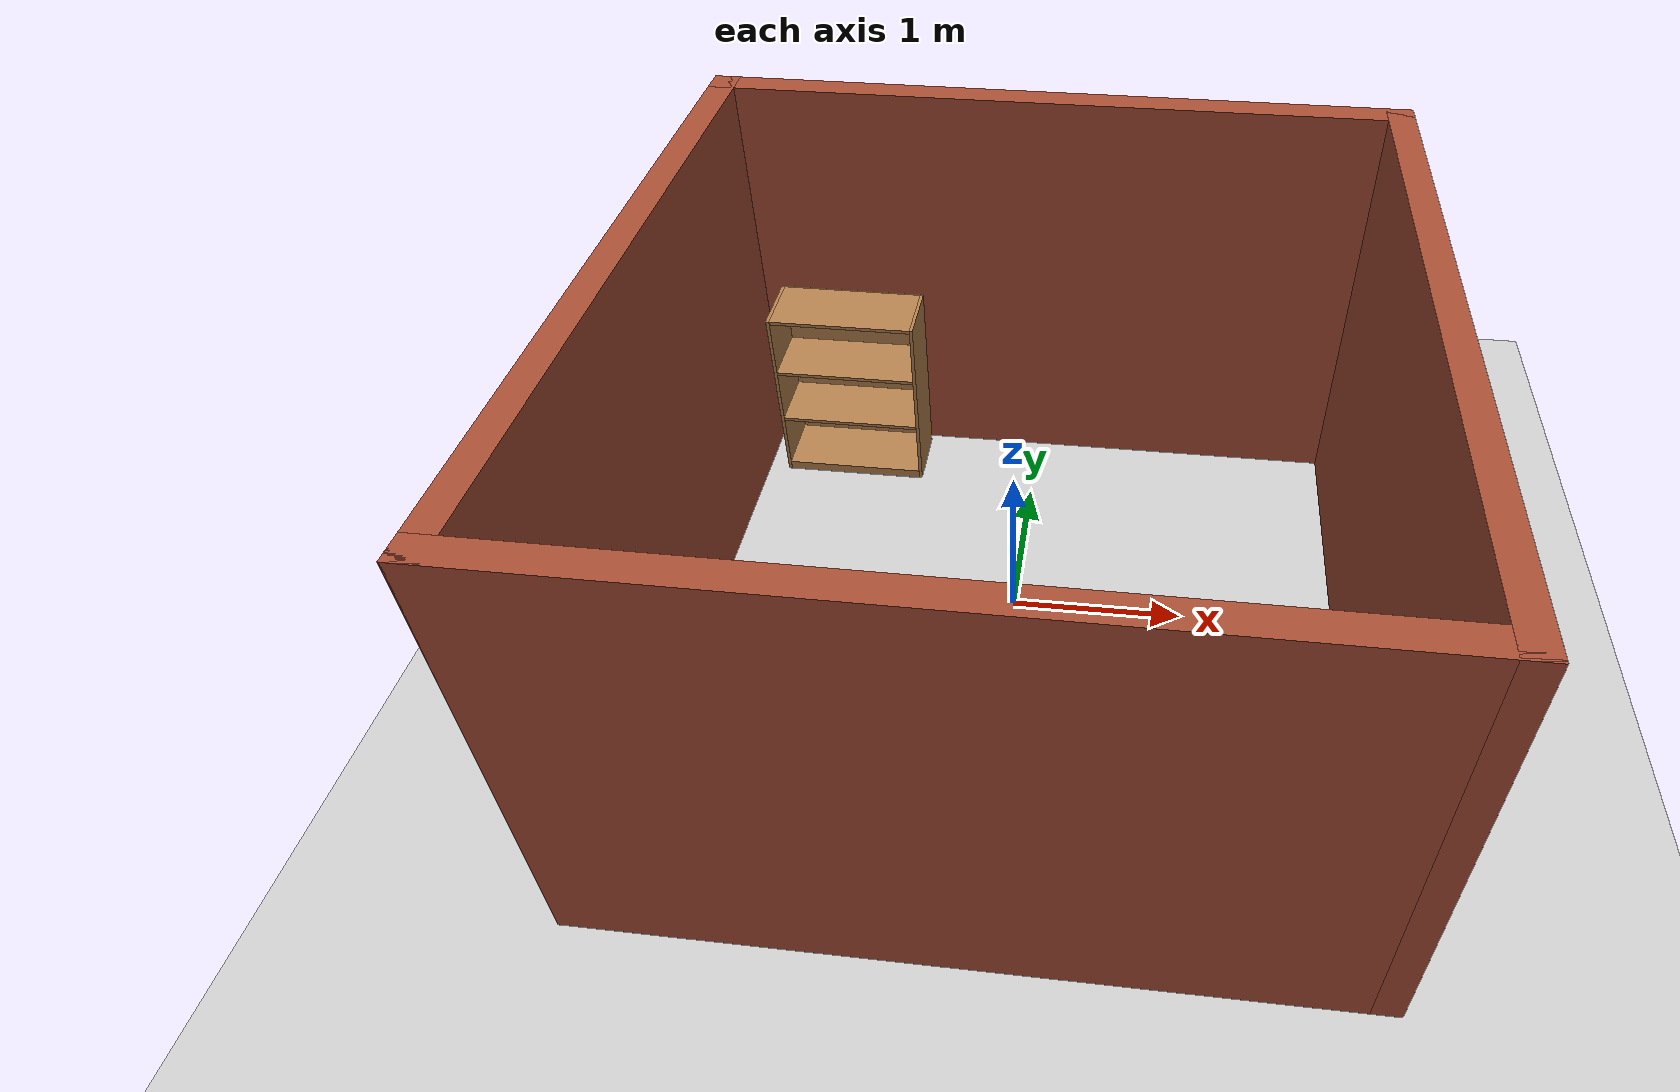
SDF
<sdf version="1.6">
 <world name="default">
  <light name="sun" type="directional">
   <pose>0 0 10 0 -0 0</pose>
   <diffuse>0.8 0.8 0.8 1</diffuse>
   <specular>0.2 0.2 0.2 1</specular>
   <attenuation>
    <range>1000</range>
    <constant>0.9</constant>
    <linear>0.01</linear>
    <quadratic>0.001</quadratic>
   </attenuation>
   <direction>-0.5 0.1 -0.9</direction>
  </light>
  <model name="ground_plane">
   <static>1</static>
   <link name="link">
    <collision name="collision">
     <geometry><plane><normal>0 0 1</normal><size>100 100</size></plane></geometry>
     <surface>
      <contact><collide_bitmask>65535</collide_bitmask></contact>
      <friction><ode><mu>100</mu><mu2>50</mu2></ode></friction>
     </surface>
    </collision>
    <visual name="visual">
     <cast_shadows>0</cast_shadows>
     <geometry><plane><normal>0 0 1</normal><size>100 100</size></plane></geometry>
     <material>
      <script><uri>file://media/materials/scripts/gazebo.material</uri><name>Gazebo/Grey</name></script>
     </material>
    </visual>
   </link>
  </model>
  <gravity>0 0 -9.8</gravity>
  <magnetic_field>6e-06 2.3e-05 -4.2e-05</magnetic_field>
  <atmosphere type="adiabatic"/>
  <physics name="default_physics" default="0" type="ode">
   <max_step_size>0.001</max_step_size>
   <real_time_factor>1</real_time_factor>
   <real_time_update_rate>1000</real_time_update_rate>
  </physics>
  <scene><ambient>0.4 0.4 0.4 1</ambient><background>0.7 0.7 0.7 1</background><shadows>1</shadows></scene>
  <audio><device>default</device></audio>
  <spherical_coordinates>
   <surface_model>EARTH_WGS84</surface_model>
   <latitude_deg>0</latitude_deg>
   <longitude_deg>0</longitude_deg>
   <elevation>0</elevation>
   <heading_deg>0</heading_deg>
  </spherical_coordinates>
  <model name="walls">
   <pose>0.052761 -0.332801 0 0 -0 0</pose>
   <link name="Wall_10">
    <collision name="Wall_10_Collision">
     <geometry><box><size>4 0.15 2.5</size></box></geometry>
     <pose>0 0 1.25 0 -0 0</pose>
    </collision>
    <visual name="Wall_10_Visual">
     <pose>0 0 1.25 0 -0 0</pose>
     <geometry><box><size>4 0.15 2.5</size></box></geometry>
     <material>
      <script><uri>file://media/materials/scripts/gazebo.material</uri><name>Gazebo/Bricks</name></script>
      <ambient>1 1 1 1</ambient>
     </material>
     <meta><layer>0</layer></meta>
    </visual>
    <pose>0 -1.925 0 0 -0 3.14158</pose>
   </link>
   <link name="Wall_11">
    <collision name="Wall_11_Collision">
     <geometry><box><size>4 0.15 2.5</size></box></geometry>
     <pose>0 0 1.25 0 -0 0</pose>
    </collision>
    <visual name="Wall_11_Visual">
     <pose>0 0 1.25 0 -0 0</pose>
     <geometry><box><size>4 0.15 2.5</size></box></geometry>
     <material>
      <script><uri>file://media/materials/scripts/gazebo.material</uri><name>Gazebo/Bricks</name></script>
      <ambient>1 1 1 1</ambient>
     </material>
     <meta><layer>0</layer></meta>
    </visual>
    <pose>-1.92485 2.6e-05 0 0 -0 1.5708</pose>
   </link>
   <link name="Wall_8">
    <collision name="Wall_8_Collision">
     <geometry><box><size>4 0.15 2.5</size></box></geometry>
     <pose>0 0 1.25 0 -0 0</pose>
    </collision>
    <visual name="Wall_8_Visual">
     <pose>0 0 1.25 0 -0 0</pose>
     <geometry><box><size>4 0.15 2.5</size></box></geometry>
     <material>
      <script><uri>file://media/materials/scripts/gazebo.material</uri><name>Gazebo/Bricks</name></script>
      <ambient>1 1 1 1</ambient>
     </material>
     <meta><layer>0</layer></meta>
    </visual>
    <pose>0 1.925 0 0 -0 -1.4e-05</pose>
   </link>
   <link name="Wall_9">
    <collision name="Wall_9_Collision">
     <geometry><box><size>4 0.15 2.5</size></box></geometry>
     <pose>0 0 1.25 0 -0 0</pose>
    </collision>
    <visual name="Wall_9_Visual">
     <pose>0 0 1.25 0 -0 0</pose>
     <geometry><box><size>4 0.15 2.5</size></box></geometry>
     <material>
      <script><uri>file://media/materials/scripts/gazebo.material</uri><name>Gazebo/Bricks</name></script>
      <ambient>1 1 1 1</ambient>
     </material>
     <meta><layer>0</layer></meta>
    </visual>
    <pose>1.92485 -2.6e-05 0 0 -0 -1.5708</pose>
   </link>
   <static>1</static>
  </model>
  <model name="bookshelf">
   <static>1</static>
   <link name="link">
    <inertial><mass>1</mass></inertial>
    <collision name="back">
     <pose>0 0.005 0.6 0 -0 0</pose>
     <geometry><box><size>0.9 0.01 1.2</size></box></geometry>
    </collision>
    <visual name="visual1">
     <pose>0 0.005 0.6 0 -0 0</pose>
     <geometry><box><size>0.9 0.01 1.2</size></box></geometry>
     <material>
      <script><uri>file://media/materials/scripts/gazebo.material</uri><name>Gazebo/Wood</name></script>
     </material>
    </visual>
    <collision name="left_side">
     <pose>0.45 -0.195 0.6 0 -0 0</pose>
     <geometry><box><size>0.02 0.4 1.2</size></box></geometry>
    </collision>
    <visual name="visual2">
     <pose>0.45 -0.195 0.6 0 -0 0</pose>
     <geometry><box><size>0.02 0.4 1.2</size></box></geometry>
     <material>
      <script><uri>file://media/materials/scripts/gazebo.material</uri><name>Gazebo/Wood</name></script>
     </material>
    </visual>
    <collision name="right_side">
     <pose>-0.45 -0.195 0.6 0 -0 0</pose>
     <geometry><box><size>0.02 0.4 1.2</size></box></geometry>
    </collision>
    <visual name="visual3">
     <pose>-0.45 -0.195 0.6 0 -0 0</pose>
     <geometry><box><size>0.02 0.4 1.2</size></box></geometry>
     <material>
      <script><uri>file://media/materials/scripts/gazebo.material</uri><name>Gazebo/Wood</name></script>
     </material>
    </visual>
    <collision name="bottom">
     <pose>0 -0.195 0.03 0 -0 0</pose>
     <geometry><box><size>0.88 0.4 0.06</size></box></geometry>
    </collision>
    <visual name="visual4">
     <pose>0 -0.195 0.03 0 -0 0</pose>
     <geometry><box><size>0.88 0.4 0.06</size></box></geometry>
     <material>
      <script><uri>file://media/materials/scripts/gazebo.material</uri><name>Gazebo/Wood</name></script>
     </material>
    </visual>
    <collision name="top">
     <pose>0 -0.195 1.19 0 -0 0</pose>
     <geometry><box><size>0.88 0.4 0.02</size></box></geometry>
    </collision>
    <visual name="visual5">
     <pose>0 -0.195 1.19 0 -0 0</pose>
     <geometry><box><size>0.88 0.4 0.02</size></box></geometry>
     <material>
      <script><uri>file://media/materials/scripts/gazebo.material</uri><name>Gazebo/Wood</name></script>
     </material>
    </visual>
    <collision name="low_shelf">
     <pose>0 -0.195 0.43 0 -0 0</pose>
     <geometry><box><size>0.88 0.4 0.02</size></box></geometry>
    </collision>
    <visual name="visual6">
     <pose>0 -0.195 0.43 0 -0 0</pose>
     <geometry><box><size>0.88 0.4 0.02</size></box></geometry>
     <material>
      <script><uri>file://media/materials/scripts/gazebo.material</uri><name>Gazebo/Wood</name></script>
     </material>
    </visual>
    <collision name="high_shelf">
     <pose>0 -0.195 0.8 0 -0 0</pose>
     <geometry><box><size>0.88 0.4 0.02</size></box></geometry>
    </collision>
    <visual name="visual7">
     <pose>0 -0.195 0.8 0 -0 0</pose>
     <geometry><box><size>0.88 0.4 0.02</size></box></geometry>
     <material>
      <script><uri>file://media/materials/scripts/gazebo.material</uri><name>Gazebo/Wood</name></script>
     </material>
    </visual>
   </link>
   <pose>-1.20954 1.45801 0 0 -0 0</pose>
  </model>
 </world>
</sdf>
